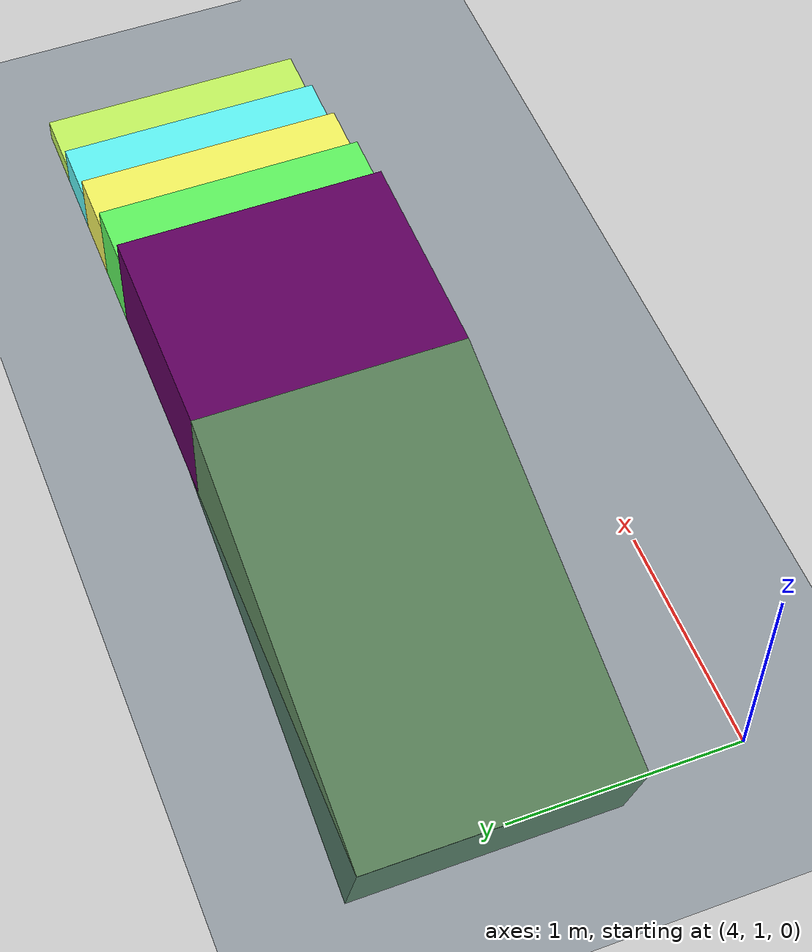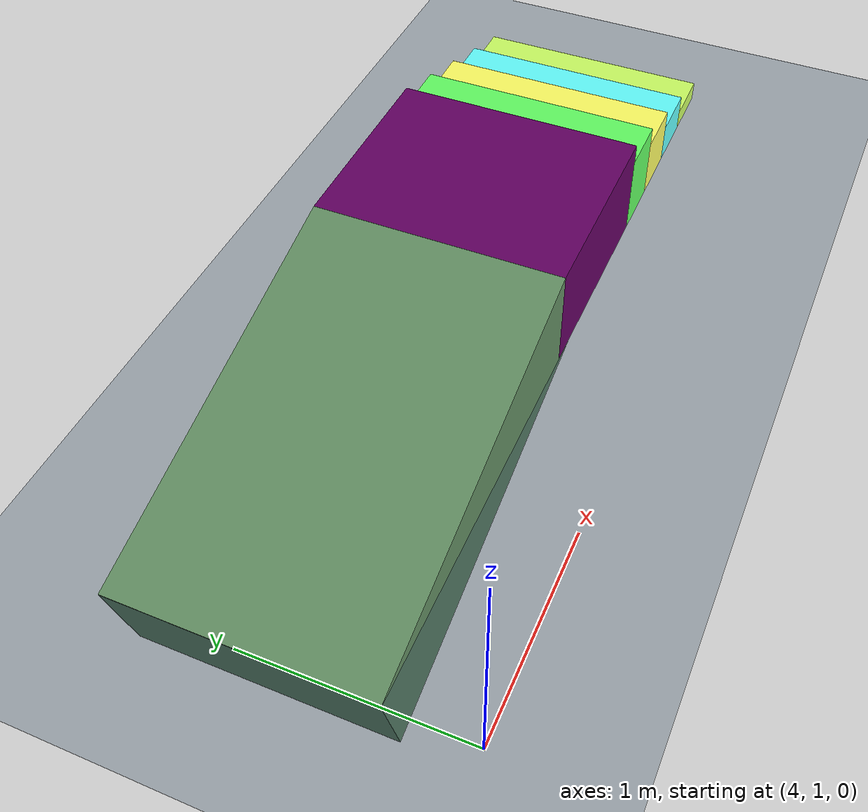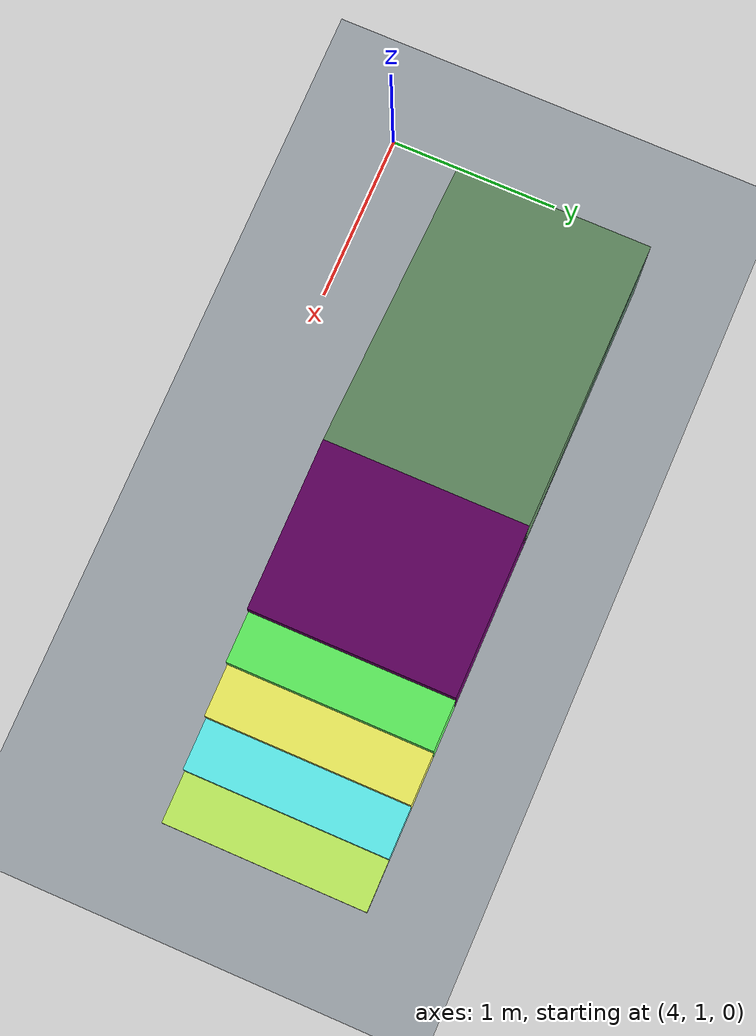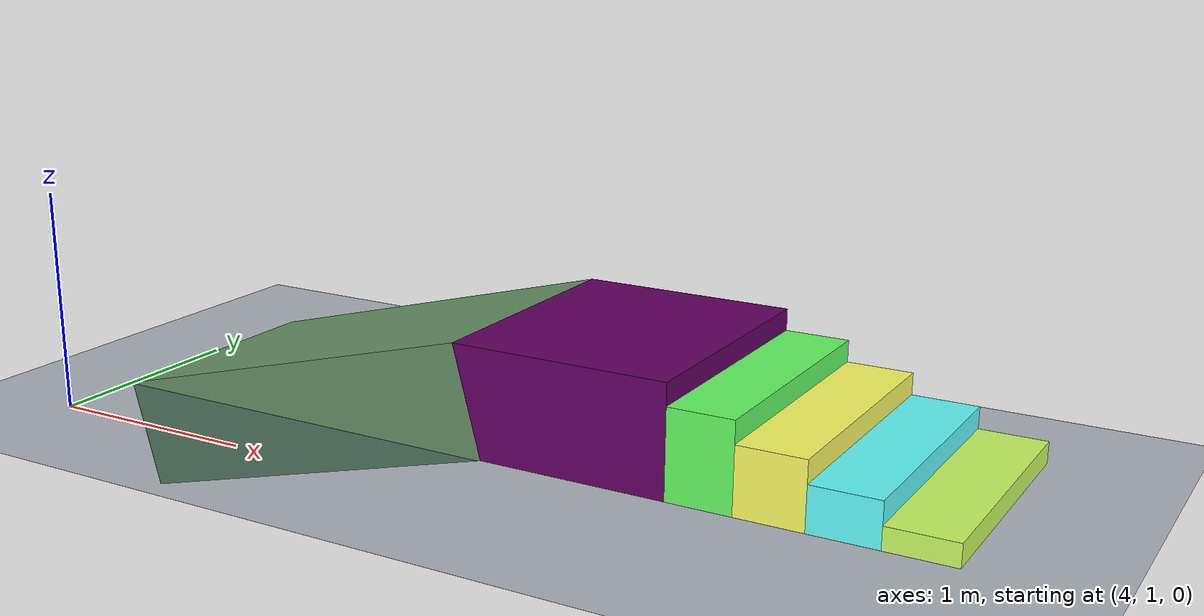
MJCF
<mujoco model="stair">
<statistic center="0 0 0.55" extent="1.1"/>

<visual>
  <headlight diffuse="0.6 0.6 0.6" ambient="0.3 0.3 0.3" specular="0 0 0"/>
  <rgba haze="0.15 0.25 0.35 1"/>
  <global azimuth="150" elevation="-20"/>
</visual>
<visual>
  <rgba com="0.502 1.0 0 0.5" contactforce="0.98 0.4 0.4 1" contactpoint="1.0 1.0 0.6 0.4"/>
  <scale com="0.2" forcewidth="0.03" contactwidth="0.01" contactheight="0.02" framewidth="0.05" framelength="0.6"/>
  <map force="0.005"/>
</visual>
<asset>
  <texture name="skybox" type="skybox" builtin="gradient" rgb1="0.2 0.3 0.4" rgb2="0 0 0" width="1000" height="1000" mark="random" random="0.001" markrgb="1 1 1"/>
  <texture type="2d" name="groundplane" builtin="checker" mark="edge" rgb1="0.2 0.3 0.4" rgb2="0.1 0.2 0.3" markrgb="0.8 0.8 0.8" width="1000" height="1000"/>
  <material name="groundplane" texture="groundplane" texuniform="true" texrepeat="5 5" reflectance="0.2"/>
</asset>

<worldbody>
  <light pos="0 0 10" dir="0 0 -1" directional="true"/>
  <geom name="floor" size="0 3 .125" type="plane" material="groundplane" conaffinity="15" condim="3"/>
  <body name="box" pos="5 2 0">
    <geom type="box" size="0.9659 0.6 0.2588" euler="0 -15 0" pos="0 0 0" rgba="0.39 0.56 0.39 1" conaffinity="15" condim="3"/>
    <geom type="box" size="0.5 0.6 0.25" euler="0 0 0" pos="1.366 0 0.25" rgba="0.39 0 0.39 1" conaffinity="15" condim="3"/>
    <geom type="box" size="0.15 0.6 0.2" euler="0 0 0" pos="2.01 0 0.2" rgba="0.39 1 0.39 1" conaffinity="15" condim="3"/>
    <geom type="box" size="0.15 0.6 0.15" euler="0 0 0" pos="2.31 0 0.15" rgba="1 1 0.39 1" conaffinity="15" condim="3"/>
    <geom type="box" size="0.15 0.6 0.1" euler="0 0 0" pos="2.61 0 0.1" rgba="0.39 1 2 1" conaffinity="15" condim="3"/>
    <geom type="box" size="0.15 0.6 0.05" euler="0 0 0" pos="2.91 0 0.05" rgba="0.8 1 0.39 1" conaffinity="15" condim="3"/>
  </body>
</worldbody>
</mujoco>
